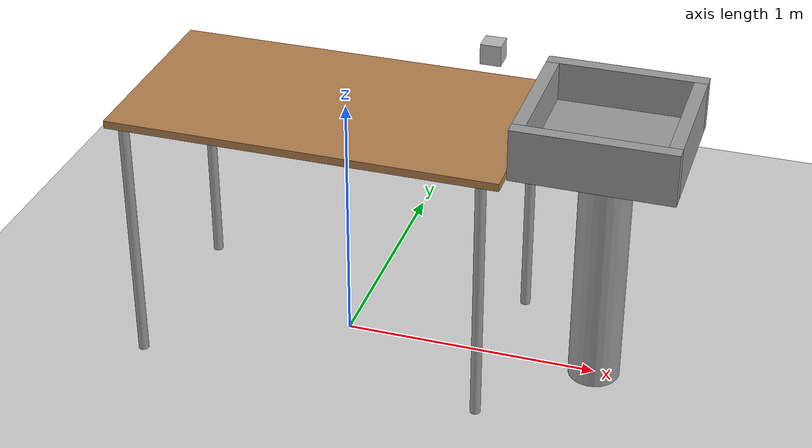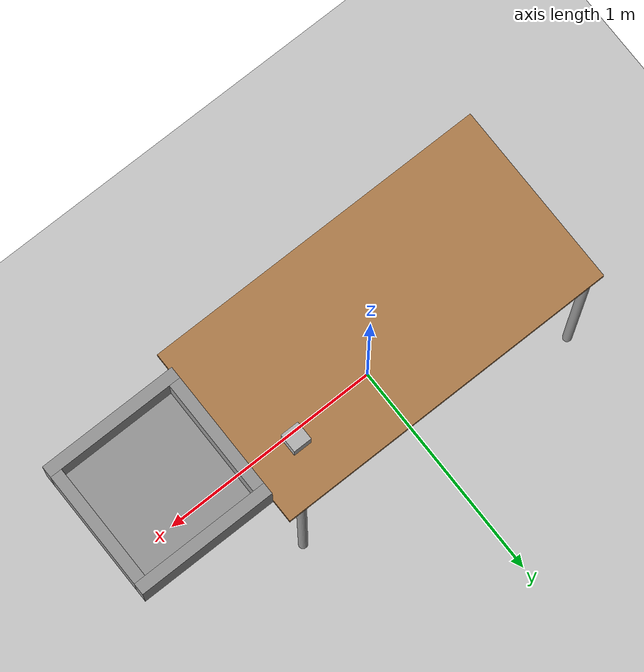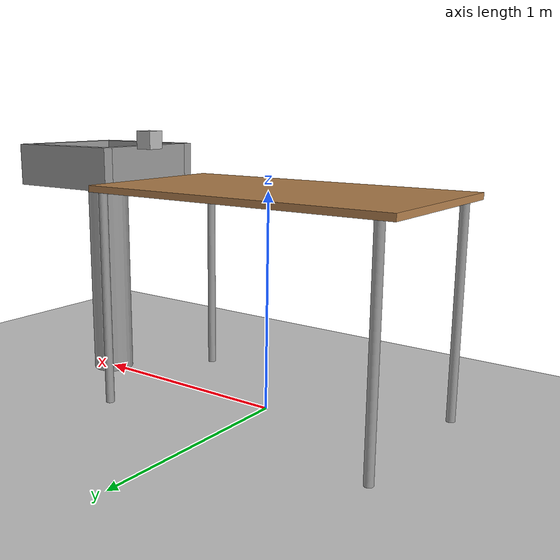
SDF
<sdf version="1.4">
 <world name="qual_task_2">
  <physics type="ode">
   <gravity>0 0 -9.81</gravity>
   <ode>
    <solver><type>quick</type><iters>50</iters><sor>1.4</sor></solver>
    <constraints>
     <cfm>0.0</cfm>
     <erp>0.2</erp>
     <contact_max_correcting_vel>100.0</contact_max_correcting_vel>
     <contact_surface_layer>0.0</contact_surface_layer>
    </constraints>
   </ode>
   <real_time_update_rate>1000</real_time_update_rate>
   <max_step_size>0.001</max_step_size>
  </physics>
  <scene><ambient>0.3 0.3 0.3 1.0</ambient></scene>
  <light type="directional" name="sun">
   <pose>0 0 100 0 0 0</pose>
   <diffuse>0.9 0.9 0.9 1</diffuse>
   <specular>0.1 0.1 0.1 1</specular>
   <attenuation>
    <range>1000</range>
    <constant>0.9</constant>
    <linear>0.01</linear>
    <quadratic>0.001</quadratic>
   </attenuation>
   <direction>-0.2 0.0 -1.0</direction>
  </light>
  <light type="point" name="light_bulb">
   <cast_shadows>false</cast_shadows>
   <pose>-3 0 4 0 0 0</pose>
   <diffuse>0.5 0.5 0.5 1</diffuse>
   <specular>0.0 0.0 0.0 1</specular>
   <attenuation>
    <range>80</range>
    <constant>0.9</constant>
    <linear>0.01</linear>
    <quadratic>0.001</quadratic>
   </attenuation>
  </light>
  <include><uri>model://ground_plane</uri></include>
  <include><uri>model://table</uri><pose>-0.05 0 0 0 0 0</pose></include>
  <include><uri>model://april_box</uri><pose>0.51 0.2 1.213 0 0 3.1415</pose></include>
  <model name="bin">
   <static>true</static>
   <pose>1.0 0.0 1.00 0 0 0</pose>
   <link name="link">
    <collision name="pedistal_collision">
     <pose>0 0 -0.5 0 0 0</pose>
     <geometry><cylinder><radius>0.1</radius><length>1.0</length></cylinder></geometry>
    </collision>
    <visual name="pedistal_visual">
     <pose>0 0 -0.5 0 0 0</pose>
     <geometry><cylinder><radius>0.1</radius><length>1.0</length></cylinder></geometry>
     <material>
      <script><uri>file://media/materials/scripts/gazebo.material</uri><name>Gazebo/Grey</name></script>
     </material>
    </visual>
    <collision name="bottom_collision"><geometry><box><size>0.5 0.5 0.05</size></box></geometry></collision>
    <visual name="bottom_visual">
     <geometry><box><size>0.5 0.5 0.05</size></box></geometry>
     <material>
      <script><uri>file://media/materials/scripts/gazebo.material</uri><name>Gazebo/Grey</name></script>
     </material>
    </visual>
    <collision name="side1_collision">
     <pose>0 0.275 0.075 0 0 0</pose>
     <geometry><box><size>0.6 0.05 0.2</size></box></geometry>
    </collision>
    <visual name="side1_visual">
     <pose>0 0.275 0.075 0 0 0</pose>
     <geometry><box><size>0.6 0.05 0.2</size></box></geometry>
     <material>
      <script><uri>file://media/materials/scripts/gazebo.material</uri><name>Gazebo/Grey</name></script>
     </material>
    </visual>
    <collision name="side2_collision">
     <pose>0 -0.275 0.075 0 0 0</pose>
     <geometry><box><size>0.6 0.05 0.2</size></box></geometry>
    </collision>
    <visual name="side2_visual">
     <pose>0 -0.275 0.075 0 0 0</pose>
     <geometry><box><size>0.6 0.05 0.2</size></box></geometry>
     <material>
      <script><uri>file://media/materials/scripts/gazebo.material</uri><name>Gazebo/Grey</name></script>
     </material>
    </visual>
    <collision name="side3_collision">
     <pose>0.275 0 0.075 0 0 0</pose>
     <geometry><box><size>0.05 0.5 0.2</size></box></geometry>
    </collision>
    <visual name="side3_visual">
     <pose>0.275 0 0.075 0 0 0</pose>
     <geometry><box><size>0.05 0.5 0.2</size></box></geometry>
     <material>
      <script><uri>file://media/materials/scripts/gazebo.material</uri><name>Gazebo/Grey</name></script>
     </material>
    </visual>
    <collision name="side4_collision">
     <pose>-0.275 0 0.075 0 0 0</pose>
     <geometry><box><size>0.05 0.5 0.2</size></box></geometry>
    </collision>
    <visual name="side4_visual">
     <pose>-0.275 0 0.075 0 0 0</pose>
     <geometry><box><size>0.05 0.5 0.2</size></box></geometry>
     <material>
      <script><uri>file://media/materials/scripts/gazebo.material</uri><name>Gazebo/Grey</name></script>
     </material>
    </visual>
   </link>
  </model>
  <plugin filename="libVRCPlugin.so" name="vrc_plugin">
   <atlas><model_name>atlas</model_name><pin_link>pelvis</pin_link></atlas>
   <drc_vehicle><model_name>golf_cart</model_name><seat_link>chassis</seat_link></drc_vehicle>
   <drc_fire_hose>
    <fire_hose_model>fire_hose</fire_hose_model>
    <coupling_link>coupling</coupling_link>
    <standpipe_model>standpipe</standpipe_model>
    <spout_link>standpipe</spout_link>
    <thread_pitch>-1000</thread_pitch>
    <coupling_relative_pose>1.17038e-05 -0.125623 0.35 -0.0412152 -1.57078 1.61199</coupling_relative_pose>
   </drc_fire_hose>
  </plugin>
  <plugin filename="libVRCScoringPlugin.so" name="vrc_scoring">
   <score_file>/tmp/qual_task_2/score.log</score_file>
  </plugin>
 </world>
</sdf>

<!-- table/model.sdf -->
<sdf version="1.5">
  <model name="table">
    <static>true</static>
    <link name="link">
      <collision name="surface">
        <pose>0 0 1.0 0 0 0</pose>
        <geometry>
          <box>
            <size>1.5 0.8 0.03</size>
          </box>
        </geometry>
        <surface>
          <friction>
            <ode>
              <mu>0.6</mu>
              <mu2>0.6</mu2>
            </ode>
          </friction>
        </surface>
      </collision>
      <visual name="visual1">
        <pose>0 0 1.0 0 0 0</pose>
        <geometry>
          <box>
            <size>1.5 0.8 0.03</size>
          </box>
        </geometry>
        <material>
          <script>
            <uri>model://media/materials/scripts/gazebo.material</uri>
            <name>Gazebo/Wood</name>
          </script>
        </material>
      </visual>
      <collision name="front_left_leg">
        <pose>0.68 0.38 0.5 0 0 0</pose>
        <geometry>
          <cylinder>
            <radius>0.02</radius>
            <length>1.0</length>
          </cylinder>
        </geometry>
      </collision>
      <visual name="front_left_leg">
        <pose>0.68 0.38 0.5 0 0 0</pose>
        <geometry>
          <cylinder>
            <radius>0.02</radius>
            <length>1.0</length>
          </cylinder>
        </geometry>
        <material>
          <script>
            <uri>model://media/materials/scripts/gazebo.material</uri>
            <name>Gazebo/Grey</name>
          </script>
        </material>
      </visual>
      <collision name="front_right_leg">
        <pose>0.68 -0.38 0.5 0 0 0</pose>
        <geometry>
          <cylinder>
            <radius>0.02</radius>
            <length>1.0</length>
          </cylinder>
        </geometry>
      </collision>
      <visual name="front_right_leg">
        <pose>0.68 -0.38 0.5 0 0 0</pose>
        <geometry>
          <cylinder>
            <radius>0.02</radius>
            <length>1.0</length>
          </cylinder>
        </geometry>
        <material>
          <script>
            <uri>model://media/materials/scripts/gazebo.material</uri>
            <name>Gazebo/Grey</name>
          </script>
        </material>
      </visual>
      <collision name="back_right_leg">
        <pose>-0.68 -0.38 0.5 0 0 0</pose>
        <geometry>
          <cylinder>
            <radius>0.02</radius>
            <length>1.0</length>
          </cylinder>
        </geometry>
      </collision>
      <visual name="back_right_leg">
        <pose>-0.68 -0.38 0.5 0 0 0</pose>
        <geometry>
          <cylinder>
            <radius>0.02</radius>
            <length>1.0</length>
          </cylinder>
        </geometry>
        <material>
          <script>
            <uri>model://media/materials/scripts/gazebo.material</uri>
            <name>Gazebo/Grey</name>
          </script>
        </material>
      </visual>
      <collision name="back_left_leg">
        <pose>-0.68 0.38 0.5 0 0 0</pose>
        <geometry>
          <cylinder>
            <radius>0.02</radius>
            <length>1.0</length>
          </cylinder>
        </geometry>
      </collision>
      <visual name="back_left_leg">
        <pose>-0.68 0.38 0.5 0 0 0</pose>
        <geometry>
          <cylinder>
            <radius>0.02</radius>
            <length>1.0</length>
          </cylinder>
        </geometry>
        <material>
          <script>
            <uri>model://media/materials/scripts/gazebo.material</uri>
            <name>Gazebo/Grey</name>
          </script>
        </material>
      </visual>
    </link>
  </model>
</sdf>

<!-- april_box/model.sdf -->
<sdf version="1.4">
    <model name="april_box">
        <static>true</static>
        <link name="chassis">
            <pose>0 0 0 0 0 0</pose>
            <collision name="collision">
                <geometry>
                    <box>
                        <size>0.0795 0.0795 0.0795</size>
                    </box>
                </geometry>
            </collision>
            <visual name="visual">
                <geometry>
                    <mesh>
                        <uri>model://april_box/meshes/april_box.dae</uri>
                        <scale>0.0795 0.0795 0.0795</scale>
                    </mesh>
                </geometry>
            </visual>
        </link>
    </model>
</sdf>
